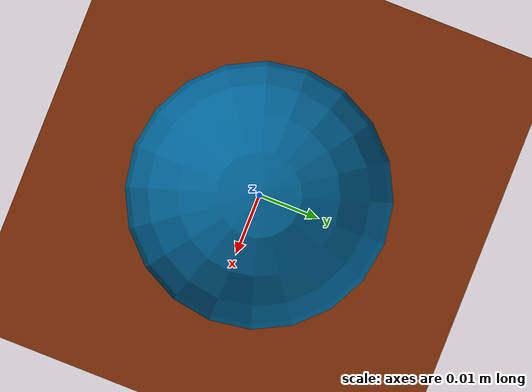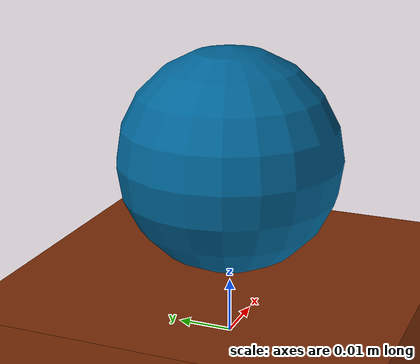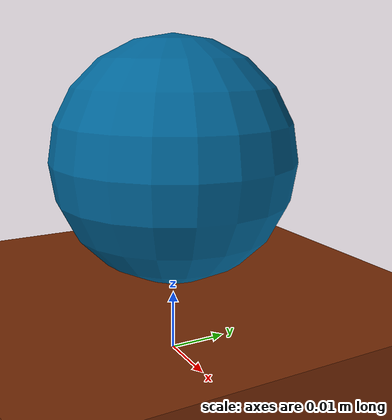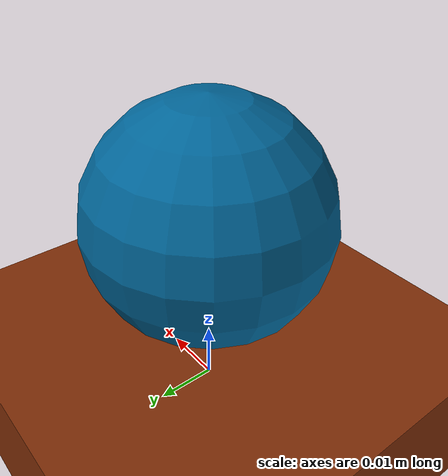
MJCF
<mujoco model="LWR">
  <compiler
    angle="radian"
    meshdir="../../meshes"
    inertiafromgeom="true" />
  <option
    iterations="200"
    timestep="0.001"
    solver="CG"/>
  <size njmax="500" nconmax="100" />
  <visual>
    <map
      fogstart="1.5"
      fogend="3"
      force="0.3"
      />
    <quality
      shadowsize="8192"/>
    <scale
      forcewidth="0.03"
      contactwidth="0.05"
      contactheight="0.03"
      framelength="0.3"
      framewidth="0.02"/>
  </visual>
  <asset>
    <mesh name="small_table" file="utils/small_table.stl"/>
  </asset>
  <worldbody>
    <light
      directional="false"
      cutoff="90"
      exponent="1"
      diffuse="1 1 1"
      specular="0 0 0"
      pos="1 0 1.5"
      dir="-1 0 -2.5"/>
    <body
      name="smalltable"
      pos="0 0 0"
      quat="1 0 0 0">
      <geom
        name="smalltable"
        friction="0.5 0.005 0.0001"
        type="box"
        size="0.4 0.4 0.0125"
        rgba="0.5 0.18 0.03 1"/>
    </body>
    <body
      name="optoforce"
      pos="0 0.0 0.033"
      quat="1 0 0 0">
      <joint
        name="finger_free_joint"
        type="free"/>
      <geom name="optoforce"  rgba="0.0 0.4 0.6 1" size=".02" type="sphere" mass ="0.2" />
    </body>
    <site name="target" pos="0 0.0 0.033" size=".02" rgba="1 0.3 0.8 0.3" type="sphere"/>
  </worldbody>
  <actuator>
    <motor  gear="1 0 0 0 0 0" joint="finger_free_joint" name="finger_0_wrench_actuator"/>
    <motor  gear="0 1 0 0 0 0" joint="finger_free_joint" name="finger_1_wrench_actuator"/>
    <motor  gear="0 0 1 0 0 0" joint="finger_free_joint" name="finger_2_wrench_actuator"/>
    <motor  gear="0 0 0 1 0 0" joint="finger_free_joint" name="finger_3_wrench_actuator"/>
    <motor  gear="0 0 0 0 1 0" joint="finger_free_joint" name="finger_4_wrench_actuator"/>
    <motor  gear="0 0 0 0 0 1" joint="finger_free_joint" name="finger_5_wrench_actuator"/>
  </actuator>
</mujoco>
